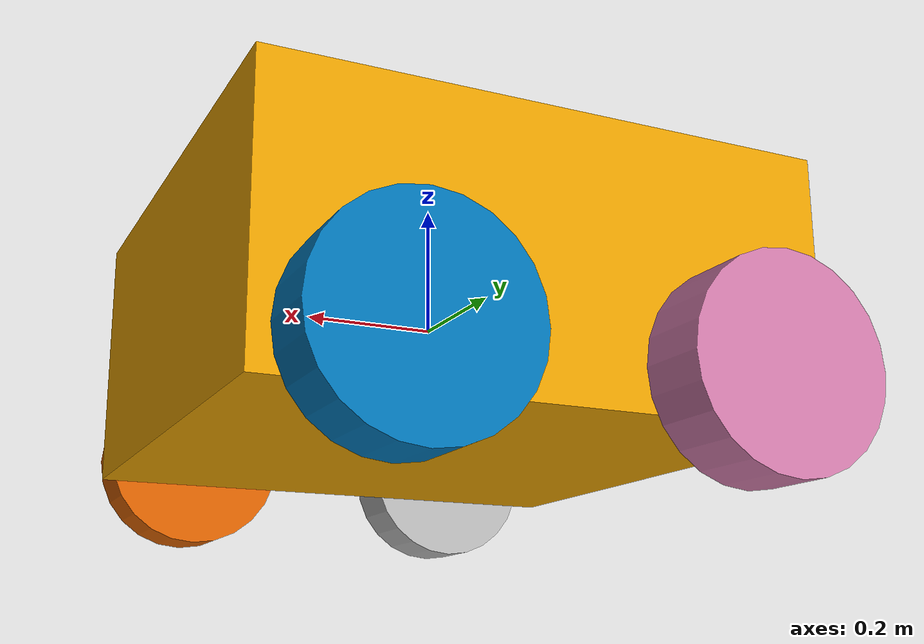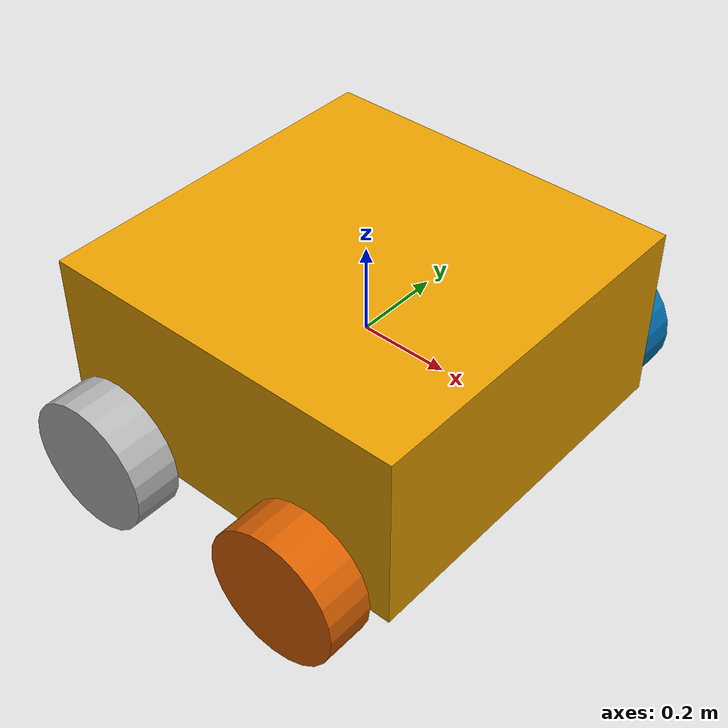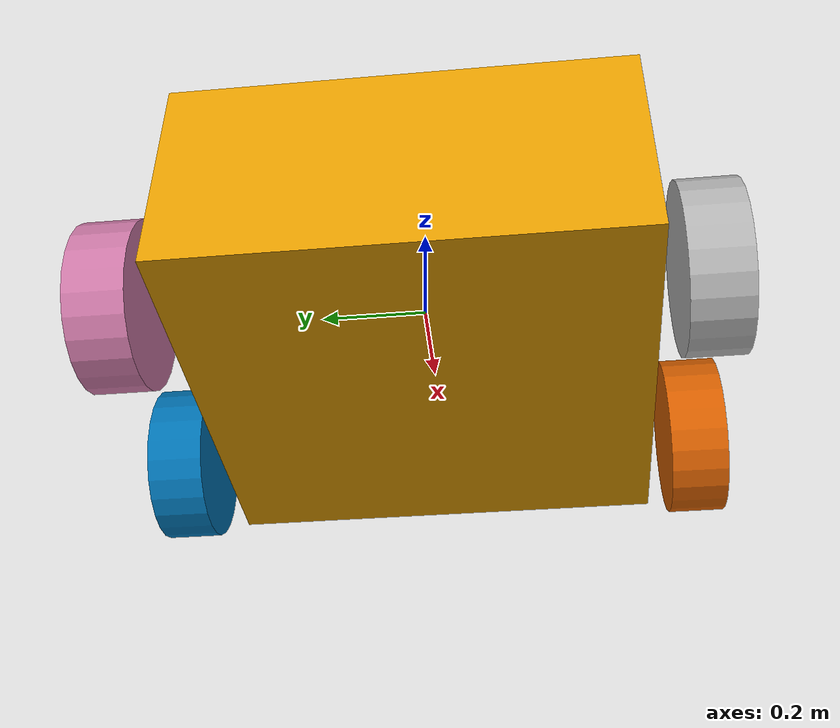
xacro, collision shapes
<?xml version="1.0"?>

<robot name="smb" xmlns:xacro="http://ros.org/wiki/xacro">
  <xacro:property name="M_PI" value="3.14159"/>

    <!-- Chassis Info -->
  <xacro:property name="base_x_size" value="0.8382" />
  <xacro:property name="base_y_size" value="0.8382" />
  <xacro:property name="base_z_size" value="0.4064" />
  <xacro:property name="chassis_mass" value="96.1616" />

  <!--Inertia Info -->
  <xacro:property name="dummy_inertia" value="1e-09"/>

  <xacro:macro name="box_inertia" params="m x y z">
    <inertia ixx="${m*(y*y+z*z)/12}" ixy="0" ixz="0"
             iyy="${m*(x*x+z*z)/12}" iyz="0"
             izz="${m*(x*x+z*z)/12}" />
  </xacro:macro>

<!--GPS Marco-->
  <xacro:macro name="novatel_smart6" params="prefix">
  <link name="${prefix}_link">
    <visual>
      <origin xyz="0 0 3" rpy="0 0 0" />
      <geometry>
        <mesh filename="package://smb_description/meshes/SMB_meshs/gps.dae"/>
      </geometry>
    </visual>
  </link>
  </xacro:macro>

  <xacro:arg name="3d_laser_enable" default="false" />
  <xacro:arg name="laser_enabled" default="false" />
  <xacro:arg name="laser2_enabled" default="false" />
  <xacro:arg name="gps_enabled" default="false" />
  <xacro:arg name="gpu" default="false"/>
  <xacro:arg name="laser_xyz" default="$(optenv SMB_LMS1XX_XYZ ${base_x_size/2*1.1} 0.0 ${-base_z_size/2})" />
  <xacro:arg name="laser_rpy" default="$(optenv SMB_LMS1XX_RPY 0.0 0.0 0.0)" />

  <xacro:arg name="laser2_xyz" default="$(optenv SMB_LMS1XX_XYZ ${-base_x_size/2*1.1} 0.0 ${-base_z_size/2})" />
  <xacro:arg name="laser2_rpy" default="$(optenv SMB_LMS1XX_RPY 0.0 0.0 ${M_PI})" />

  <xacro:arg name="kinect_enabled" default="false" />
  <xacro:arg name="kinect_xyz" default="$(optenv SMB_KINECT_XYZ 0 0 0)" />
  <xacro:arg name="kinect_rpy" default="$(optenv SMB_KINECT_RPY 0 0.1 3.14)" />

  <xacro:arg name="robot_namespace" default="/" />
  <xacro:arg name="urdf_extras" default="empty.urdf" />

  <!-- Included URDF/XACRO Files -->

  <xacro:include filename="$(find smb_description)/urdf/wheel.urdf.xacro" />
  <xacro:include filename="$(find smb_description)/urdf/cart.urdf.xacro" />

  <xacro:include filename="$(find smb_description)/urdf/accessories/kinect_camera.urdf.xacro"/>
  <xacro:include filename="$(find smb_description)/urdf/accessories/sick_lms1xx_mount.urdf.xacro"/>
  <xacro:include filename="$(find smb_description)/urdf/accessories/sensor_arch.urdf.xacro"/>
  <xacro:include filename="$(find velodyne_description)/urdf/VLP-16.urdf.xacro"/>

  <!-- Wheel Mounting Positions -->
  <xacro:property name="wheelbase" value="0.25" />
  <xacro:property name="track" value="0.50" />
  <xacro:property name="wheel_vertical_offset" value="-0.15" />

  <!-- Wheel Properties -->
	<xacro:property name="wheel_length" value="0.10414" />
	<xacro:property name="wheel_radius" value="0.149225" />

  <!-- Base link is the center of the robot's bottom plate -->
  <link name="base_link">
    <visual>
      <origin xyz="0 0 0" rpy="0 0 0" />
      <geometry>
        <mesh filename="package://smb_description/meshes/base_link.dae"/>
      </geometry>
    </visual>
    <collision>
      <origin xyz="0 0 0" rpy="0 0 0" />
      <geometry>
        <box size="${base_x_size} ${base_y_size} ${base_z_size}"/>
      </geometry>
    </collision>
  </link>

  <!-- Base footprint is on the ground under the robot -->
  <link name="base_footprint"/>

  <joint name="base_footprint_joint" type="fixed">
    <origin xyz="0 0 ${wheel_vertical_offset - wheel_radius}" rpy="0 0 0" />
    <parent link="base_link" />
    <child link="base_footprint" />
  </joint>

  <!-- Interial link stores the robot's inertial information -->
  <link name="inertial_link">
    <inertial>
      <origin xyz="0 0 0" rpy="0 0 0"/>
      <mass value="${chassis_mass}" /> <!-- Mass of the Robot -->
      <xacro:box_inertia m="${chassis_mass}" x="${base_x_size}"
                         y="${base_y_size}" z="${base_z_size}" />
    </inertial>
  </link>

  <joint name="inertial_joint" type="fixed">
    <origin xyz="0 0 0" rpy="0 0 0" />
    <parent link="base_link" />
    <child link="inertial_link" />
  </joint>

  <!-- IMU Link is the standard mounting position for the UM6 IMU.-->
  <!-- Can be modified with environment variables in /etc/ros/setup.bash -->
  <link name="imu_link"/>
  <joint name="imu_joint" type="fixed">
    <origin xyz="$(optenv SMB_IMU_XYZ 0.19 0 0.149)" rpy="$(optenv SMB_IMU_RPY 0 -1.5708 3.1416)" />
    <parent link="base_link" />
    <child link="imu_link" />
  </joint>
  <gazebo reference="imu_link">
  </gazebo>

  <!-- SMB wheel macros -->
  <xacro:smb_wheel wheel_prefix="front_left">
    <origin xyz="${wheelbase} ${track} ${wheel_vertical_offset}" rpy="0 0 0" />
  </xacro:smb_wheel>
  <xacro:smb_wheel wheel_prefix="front_right">
    <origin xyz="${wheelbase} ${-track} ${wheel_vertical_offset}" rpy="0 0 0" />
  </xacro:smb_wheel>
  <xacro:smb_wheel wheel_prefix="rear_left">
    <origin xyz="${-wheelbase} ${track} ${wheel_vertical_offset}" rpy="0 0 0" />
  </xacro:smb_wheel>
  <xacro:smb_wheel wheel_prefix="rear_right">
    <origin xyz="${-wheelbase} ${-track} ${wheel_vertical_offset}" rpy="0 0 0" />
  </xacro:smb_wheel>

  <!--3D Lidar -->
  <xacro:if value="$(arg 3d_laser_enable)">
    <VLP-16 parent="base_link" name="velodyne" topic="/cloud" hz="10" samples="440" gpu="$(arg gpu)">
      <origin xyz="0.25 0 ${base_z_size/2}" rpy="0 0 0" />
  </VLP-16>
  </xacro:if>

  <!--2D Lidar -->
  <xacro:if value="$(arg laser_enabled)">

    <sick_lms1xx_mount prefix="base"/>

    <sick_lms1xx frame="base_laser" topic="scan" robot_namespace="$(arg robot_namespace)"/>

    <joint name="laser_mount_joint" type="fixed">
      <origin xyz="$(arg laser_xyz)" rpy="$(arg laser_rpy)" />
      <parent link="base_link" />
      <child link="base_laser_mount" />
    </joint>

  </xacro:if>

    <!--2nd 2D Lidar -->
  <xacro:if value="$(arg laser2_enabled)">

  <xacro:include filename="$(find lms1xx)/urdf/sick_lms1xx.urdf.xacro" />

     <link name="base2_laser_mount">
      <visual>
        <origin xyz="0 0 0" rpy="0 0 ${-M_PI/2}" />
        <geometry>
          <!-- Origin of this mesh is the base of the bracket. -->
          <mesh filename="package://smb_description/meshes/accessories/lms1xx_mount.dae" />
        </geometry>
      </visual>
      <collision>
        <origin xyz="0 0 .0585" rpy="0 0 0" />
        <geometry>
          <box size=".1 .108 .117" />
        </geometry>
      </collision>
    </link>

    <joint name="base2_laser_joint" type="fixed">
      <!-- This offset is from the base of the bracket to the LIDAR's focal point. -->
      <origin xyz="0.0352 0 0.0566" rpy="${M_PI} 0 0" />
      <parent link="base2_laser_mount" />
      <child link="base2_laser" />
    </joint>

    <sick_lms1xx frame="base2_laser" topic="scan2" robot_namespace="$(arg robot_namespace)"/>

    <joint name="laser2_mount_joint" type="fixed">
      <origin xyz="$(arg laser2_xyz)" rpy="$(arg laser2_rpy)" />
      <parent link="base_link" />
      <child link="base2_laser_mount" />
    </joint>

  </xacro:if>

  <!--Kinect -->
  <xacro:if value="$(arg kinect_enabled)">

    <xacro:sensor_arch prefix="" parent="base_link">
      <origin xyz="0.09 0 ${base_z_size-wheel_vertical_offset+wheel_radius}" rpy="0 0 ${-M_PI}"/>
    </xacro:sensor_arch>
    <joint name="kinect_frame_joint" type="fixed">
      <origin xyz="$(arg kinect_xyz)" rpy="$(arg kinect_rpy)" />
      <parent link="sensor_arch_mount_link"/>
      <child link="camera_link"/>
    </joint>

    <xacro:kinect_camera prefix="camera" robot_namespace="$(arg robot_namespace)"/>
  </xacro:if>

  <!--GPS-->
<xacro:if value="$(arg gps_enabled)">
  <link name="navsat_link">
      <visual>
        <origin xyz="0 0 0" rpy="0 0 0" />
        <geometry>
          <mesh filename="package://smb_description/meshes/SMB_meshs/gps.dae"/>
        </geometry>
      </visual>
    </link>

    <joint name="navsat_joint" type="fixed">
        <origin xyz="0 0 ${base_z_size*1}" rpy="0 0 0" />
        <parent link="base_link" />
        <child  link="navsat_link" />
    </joint>
    </xacro:if>

  <gazebo>
    <plugin name="gazebo_ros_control" filename="libgazebo_ros_control.so">
      <robotNamespace>$(arg robot_namespace)</robotNamespace>
    </plugin>
  </gazebo>

  <gazebo>
    <plugin name="imu_controller" filename="libhector_gazebo_ros_imu.so">
      <robotNamespace>$(arg robot_namespace)</robotNamespace>
      <updateRate>50.0</updateRate>
      <bodyName>base_link</bodyName>
      <topicName>imu/data</topicName>
      <accelDrift>0.001 0.001 0.001</accelDrift>
      <accelGaussianNoise>0.005 0.005 0.005</accelGaussianNoise>
      <rateDrift>0.001 0.001 0.001 </rateDrift>
      <rateGaussianNoise>0.005 0.005 0.005 </rateGaussianNoise>
      <headingDrift>0.001</headingDrift>
      <headingGaussianNoise>0.005</headingGaussianNoise>
    </plugin>
  </gazebo>

  <gazebo>
    <plugin name="gps_controller" filename="libhector_gazebo_ros_gps.so">
      <robotNamespace>$(arg robot_namespace)</robotNamespace>
      <updateRate>50</updateRate>
      <bodyName>base_link</bodyName>
      <frameId>base_link</frameId>
      <topicName>navsat/fix</topicName>
      <velocityTopicName>navsat/vel</velocityTopicName>
      <referenceLatitude>49.097745</referenceLatitude>
      <referenceLongitude>-122.260090</referenceLongitude>
      <referenceHeading>0</referenceHeading>
      <referenceAltitude>0</referenceAltitude>
      <drift>0.0001 0.0001 0.0001</drift>
    </plugin>
  </gazebo>

</robot>

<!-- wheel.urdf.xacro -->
<robot xmlns:xacro="http://ros.org/wiki/xacro" name="smb_wheel">

	  <!-- Wheel Properties -->
	<xacro:property name="wheel_length" value="0.10414" />
	<xacro:property name="wheel_radius" value="0.149225" />
	<xacro:property name="wheel_mass" value="4.18" />

	<xacro:macro name="wheel_inertia" params="m r h">
		<inertia ixx="${m*(3*r*r+h*h)/12}" ixy="0" ixz="0"
				iyy="${m*r*r/2}" iyz="0"
				izz="${m*(3*r*r+h*h)/12}" />
  	</xacro:macro>

	<xacro:macro name="smb_wheel" params="wheel_prefix *joint_pose">
		<link name="${wheel_prefix}_wheel_link">
			<inertial>
				<mass value="${wheel_mass}"/>
				<origin xyz="0 0 0" rpy="0 1.5707 1.5707"/>
				<xacro:wheel_inertia m="${wheel_mass}" r="${wheel_radius}" h="${wheel_length}" />
			</inertial>
			<visual>
				<origin xyz="0 0 0" rpy="0 0 ${M_PI}" />
				<geometry>
					<mesh filename="package://smb_description/meshes/wheel.dae" />
				</geometry>
			</visual>
			<collision>
				<origin xyz="0 0 0" rpy="${M_PI/2} 0 0"/>
				<geometry>
					<cylinder length="${wheel_length}" radius="${wheel_radius}" />
				</geometry>
			</collision>
		</link>

		<gazebo reference="${wheel_prefix}_wheel_link">
			<mu1 value="0.9"/>
			<mu2 value="0.5"/>
			<kp value="10000000.0" />
			<kd value="10.0" />
			<fdir1 value="1 0 0"/>
		</gazebo>

		<joint name="${wheel_prefix}_wheel" type="continuous">
			<parent link="base_link"/>
			<child link="${wheel_prefix}_wheel_link"/>
			<xacro:insert_block name="joint_pose"/>
			<axis xyz="0 1 0" rpy="0 0 0" />
		</joint>

		<transmission name="${wheel_prefix}_wheel_trans" type="SimpleTransmission">
			<type>transmission_interface/SimpleTransmission</type>
			<actuator name="${wheel_prefix}_wheel_motor">
				<mechanicalReduction>1</mechanicalReduction>
			</actuator>
			<joint name="${wheel_prefix}_wheel">
				<hardwareInterface>hardware_interface/VelocityJointInterface</hardwareInterface>
			</joint>
		</transmission>

	</xacro:macro>
</robot>

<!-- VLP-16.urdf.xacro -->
<robot xmlns:xacro="http://www.ros.org/wiki/xacro" name="VLP-16">
  <xacro:property name="M_PI" value="3.1415926535897931" />
  <xacro:macro name="VLP-16" params="*origin is_sim:=true parent:=base_link name:=velodyne tf_prefix:='' topic:=/velodyne_points organize_cloud:=false hz:=10 lasers:=16 samples:=1875 collision_range:=0.3 min_range:=0.0 max_range:=100.0 noise:=0.008 min_angle:=-${M_PI} max_angle:=${M_PI} gpu:=false">

    <joint name="${name}_base_mount_joint" type="fixed">
      <xacro:insert_block name="origin" />
      <parent link="${parent}"/>
      <child link="${name}_base_link"/>
    </joint>

    <link name="${name}_base_link">
      <inertial>
        <mass value="0.83"/>
        <origin xyz="0 0 0.03585"/>
        <inertia ixx="${(0.83 * (3.0*0.0516*0.0516 + 0.0717*0.0717)) / 12.0}" ixy="0" ixz="0"
          iyy="${(0.83 * (3.0*0.0516*0.0516 + 0.0717*0.0717)) / 12.0}" iyz="0"
          izz="${0.5 * 0.83 * (0.0516*0.0516)}"/>
      </inertial>
      <visual>
        <geometry>
          <mesh filename="package://velodyne_description/meshes/VLP16_base_1.dae" />
        </geometry>
      </visual>
      <visual>
        <geometry>
          <mesh filename="package://velodyne_description/meshes/VLP16_base_2.dae" />
        </geometry>
      </visual>
      <collision>
        <origin rpy="0 0 0" xyz="0 0 0.03585"/>
        <geometry>
          <cylinder radius="0.0516" length="0.0717"/>
        </geometry>
      </collision>
    </link>

    <joint name="${name}_base_scan_joint" type="fixed" >
      <origin xyz="0 0 0.0377" rpy="0 0 0" />
      <parent link="${name}_base_link" />
      <child link="${name}"/>
    </joint>

    <link name="${name}">
      <inertial>
        <mass value="0.01"/>
        <origin xyz="0 0 0"/>
        <inertia ixx="1e-7" ixy="0" ixz="0" iyy="1e-7" iyz="0" izz="1e-7"/>
      </inertial>
      <visual>
        <origin xyz="0 0 -0.0377" />
        <geometry>
          <mesh filename="package://velodyne_description/meshes/VLP16_scan.dae" />
        </geometry>
      </visual>
      <collision>
        <geometry>
          <sphere radius="0"/>
        </geometry>
      </collision>
    </link>

    <!-- Gazebo requires the velodyne_gazebo_plugins package -->
    <xacro:if value="${is_sim}">
        <gazebo reference="${name}">
            <xacro:if value="${gpu}">
                <sensor type="gpu_ray" name="${name}-VLP16">
                <pose>0 0 0 0 0 0</pose>
                <visualize>false</visualize>
                <update_rate>${hz}</update_rate>
                <ray>
                    <scan>
                    <horizontal>
                        <samples>${samples}</samples>
                        <resolution>1</resolution>
                        <min_angle>${min_angle}</min_angle>
                        <max_angle>${max_angle}</max_angle>
                    </horizontal>
                    <vertical>
                        <samples>${lasers}</samples>
                        <resolution>1</resolution>
                        <min_angle>-${15.0*M_PI/180.0}</min_angle>
                        <max_angle> ${15.0*M_PI/180.0}</max_angle>
                    </vertical>
                    </scan>
                    <range>
                    <min>${collision_range}</min>
                    <max>${max_range+1}</max>
                    <resolution>0.001</resolution>
                    </range>
                    <noise>
                    <type>gaussian</type>
                    <mean>0.0</mean>
                    <stddev>0.0</stddev>
                    </noise>
                </ray>
                <plugin name="gazebo_ros_laser_controller" filename="libgazebo_ros_velodyne_laser.so">
                    <ros>
                    <namespace>/${name}</namespace>
                    <remapping>~/out:=${topic}</remapping>
                    </ros>
                    <tf_prefix>${tf_prefix}</tf_prefix>
                    <frame_name>${name}</frame_name>
                    <organize_cloud>${organize_cloud}</organize_cloud>
                    <min_range>${min_range}</min_range>
                    <max_range>${max_range}</max_range>
                    <gaussian_noise>${noise}</gaussian_noise>
                </plugin>
                </sensor>
            </xacro:if>
            <xacro:unless value="${gpu}">
                <sensor type="ray" name="${name}-VLP16">
                <pose>0 0 0 0 0 0</pose>
                <visualize>false</visualize>
                <update_rate>${hz}</update_rate>
                <ray>
                    <scan>
                    <horizontal>
                        <samples>${samples}</samples>
                        <resolution>1</resolution>
                        <min_angle>${min_angle}</min_angle>
                        <max_angle>${max_angle}</max_angle>
                    </horizontal>
                    <vertical>
                        <samples>${lasers}</samples>
                        <resolution>1</resolution>
                        <min_angle>-${15.0*M_PI/180.0}</min_angle>
                        <max_angle> ${15.0*M_PI/180.0}</max_angle>
                    </vertical>
                    </scan>
                    <range>
                    <min>${collision_range}</min>
                    <max>${max_range+1}</max>
                    <resolution>0.001</resolution>
                    </range>
                    <noise>
                    <type>gaussian</type>
                    <mean>0.0</mean>
                    <stddev>0.0</stddev>
                    </noise>
                </ray>
                <plugin name="gazebo_ros_laser_controller" filename="libgazebo_ros_velodyne_laser.so">
                    <ros>
                    <namespace>/${name}</namespace>
                    <remapping>~/out:=${topic}</remapping>
                    </ros>
                    <tf_prefix>${tf_prefix}</tf_prefix>
                    <frame_name>${name}</frame_name>
                    <organize_cloud>${organize_cloud}</organize_cloud>
                    <min_range>${min_range}</min_range>
                    <max_range>${max_range}</max_range>
                    <gaussian_noise>${noise}</gaussian_noise>
                </plugin>
                </sensor>
            </xacro:unless>
        </gazebo>
    </xacro:if>

  </xacro:macro>
</robot>
